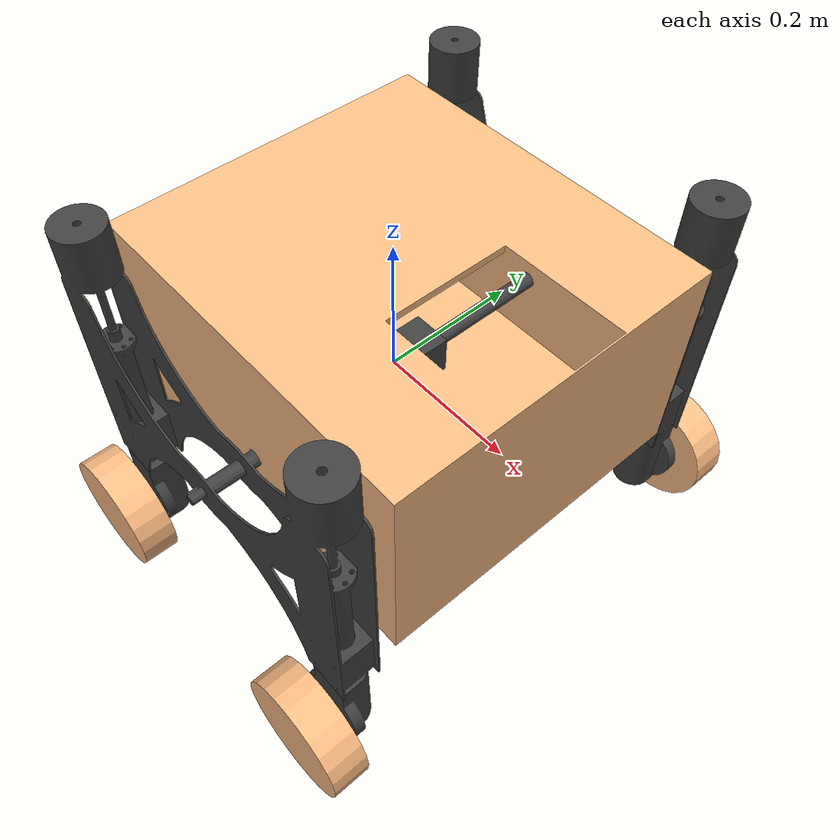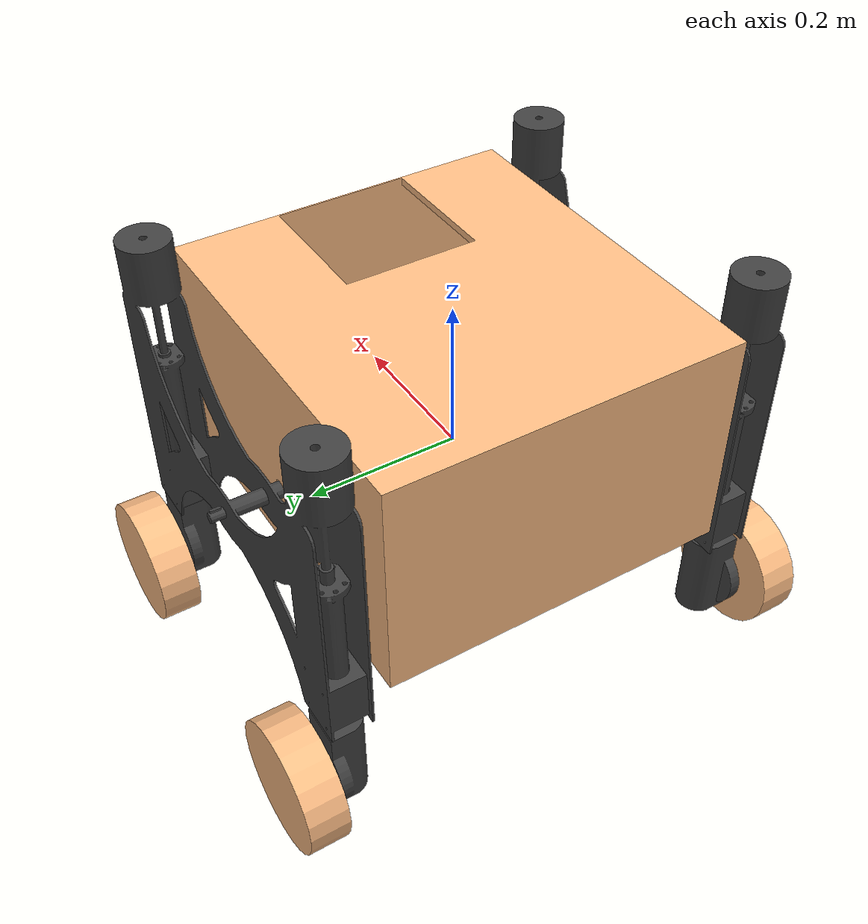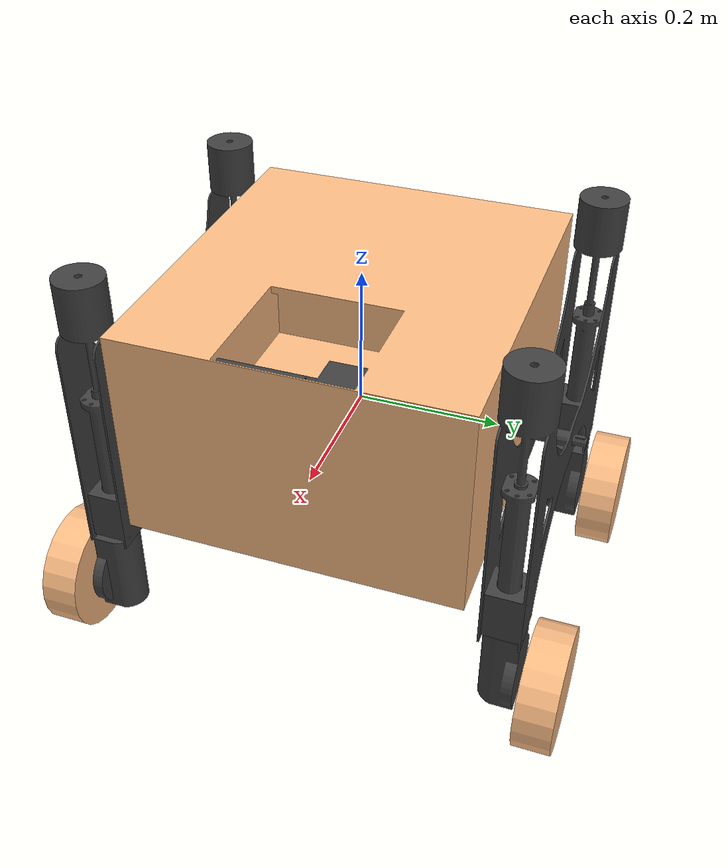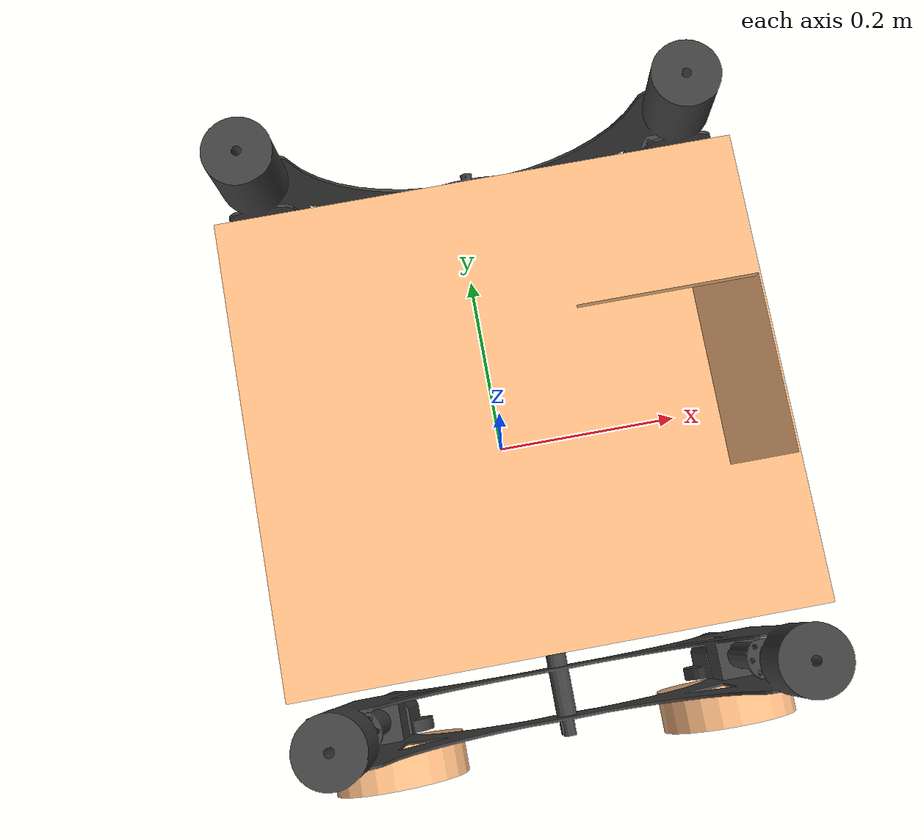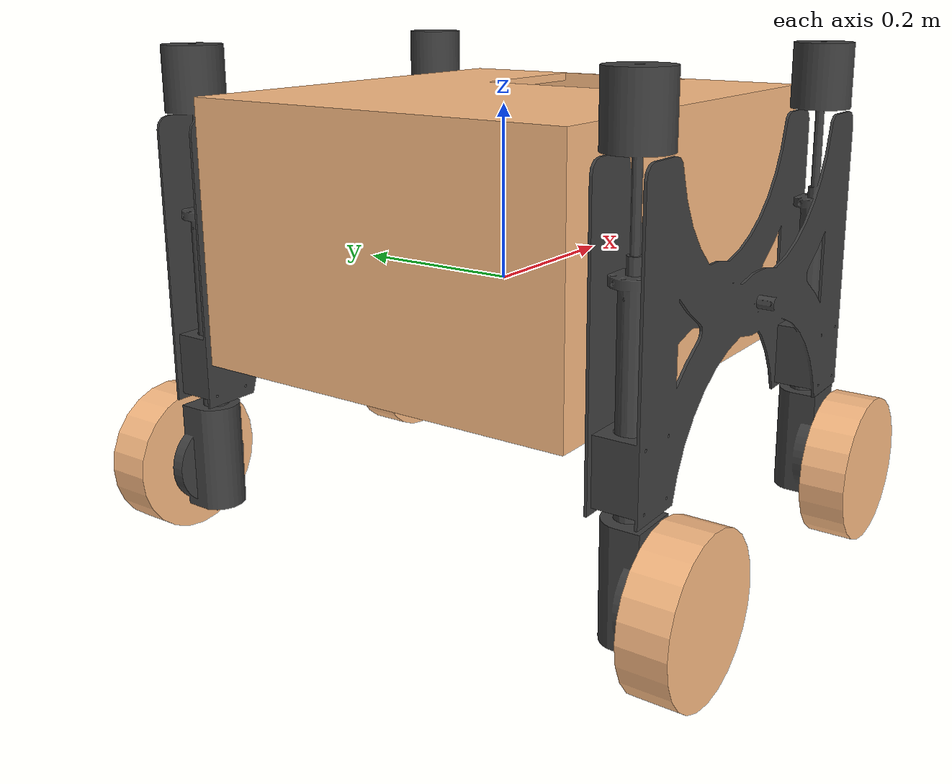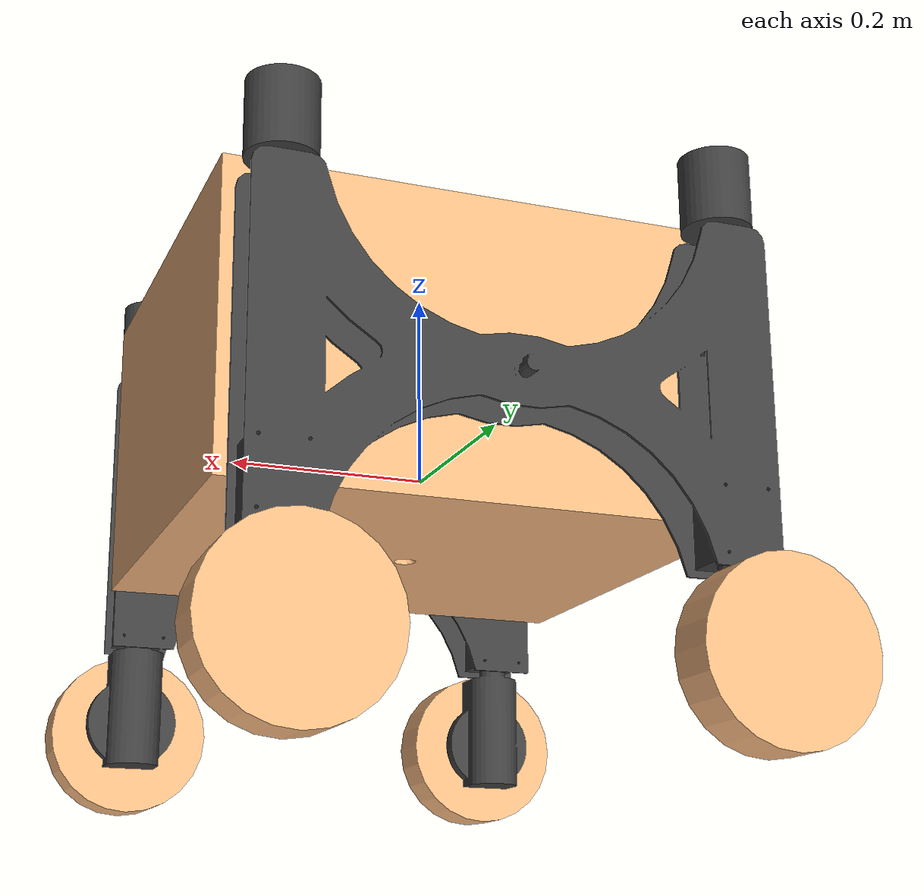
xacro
<?xml version="1.0"?>
<robot xmlns:xacro="http://www.ros.org/wiki/xacro">

  <!-- Materials -->
  <material name="orange">
    <color rgba="${252/255} ${188/255} ${132/255} 1" />
  </material>

  <material name="black">
    <color rgba="${64/255} ${64/255} ${64/255} 1" />
  </material>

  <material name="blue opaque">
    <color rgba="${0/255} ${0/255} ${255/255} 0.4" />
  </material>

  <material name="mesh_color">
    <color rgba="${0/255} ${0/255} ${255/255} 0.6" />
  </material>

  <!-- ________BASE LINK__________-->
  <link name="base_link" />

  <joint name="base_footprint_joint" type="fixed">
    <origin xyz="0 0 0" rpy="0 0 0"/>
    <parent link="base_link"/>
    <child link="base_footprint"/>
  </joint>

  <link name="base_footprint" />

  <joint name="base_to_chassis" type="fixed">
    <origin xyz="0 0 0" rpy="-3.1415 0 1.57079632679"/>
    <parent link="base_link"/>
    <child link="chassis_link"/>
  </joint>

  <!-- _____________CHASSIS LINK_____________-->
  <link name="chassis_link">
    <visual>
      <origin xyz="0 0 0" rpy="0 0 0"/>
      <geometry>
        <mesh filename="package://kridtbot/meshes/base_link.STL"/>
      </geometry>
      <material name="orange"/>
    </visual>
    <collision>
      <origin xyz="0 0 0" rpy="0 0 0"/>
      <geometry>
        <mesh filename="package://kridtbot/meshes/base_link.STL"/>
      </geometry>
      <material name="mesh_color"/>
    </collision>
    <inertial>
      <mass value="11.18100"/>
      <inertia ixx="0.52" ixy="0.00" ixz="0.00" iyy="0.48" iyz="0.04" izz="0.60"/>
    </inertial>
  </link>

  <gazebo reference="chassis_link">
    <material>Gazebo/Orange</material>
    <mu1 value="1"/>
    <mu2 value="1"/>
  </gazebo>

  <!-- _____________DIFF LINK____________-->
  <joint name="chassis_to_diff" type="fixed">
    <origin xyz="-0.00062572 0.016893 -0.01406" rpy="1.5708 0 -1.5708"/>
    <parent link="chassis_link"/>
    <child link="diff_link"/>
  </joint>

  <link name="diff_link">
    <visual>
      <origin xyz="0 0 0" rpy="0 0 0"/>
      <geometry>
        <mesh filename="package://kridtbot/meshes/diff_link.STL"/>
      </geometry>
      <material name="black"/>
    </visual>
    <collision>
      <origin xyz="0 0 0" rpy="0 0 0"/>
      <geometry>
        <mesh filename="package://kridtbot/meshes/diff_link.STL"/>
      </geometry>
      <material name="mesh_color"/>
    </collision>
    <inertial>
      <mass value="1.44"/>
      <inertia ixx="2024193.31e-9" ixy="258.53e-9" ixz="-42.56e-9" iyy="1553917.67e-9" iyz="559.93e-9" izz="1298088.14e-9"/>
    </inertial>
  </link>

  <gazebo reference="diff_link">
    <material>Gazebo/Orange</material>
    <mu1 value="1"/>
    <mu2 value="1"/>
  </gazebo>

  <!-- _____________ 1. LEFT DIFF LINK ____________-->
  <joint name="left_diff" type="fixed">
    <origin xyz="0 0 -0.28" rpy="-3.1416 0 -3.1416"/>
    <axis xyz="0 0 1"/>
    <parent link="diff_link"/>
    <child link="left_diff_link"/>
  </joint>

  <gazebo reference="left_diff">
    <material>Gazebo/Black</material>
    <mu1 value="1000"/>
    <mu2 value="1000"/>
    <provideFeedback>true</provideFeedback>
    <implicitSpringDamper>true</implicitSpringDamper>
  </gazebo>

  <link name="left_diff_link">
    <visual>
      <origin xyz="0 0 0" rpy="0 0 0"/>
      <geometry>
        <mesh filename="package://kridtbot/meshes/left_diff_link.STL"/>
      </geometry>
      <material name="black"/>
    </visual>
    <collision>
      <origin xyz="0 0 0" rpy="0 0 0"/>
      <geometry>
        <mesh filename="package://kridtbot/meshes/left_diff_link.STL"/>
      </geometry>
      <material name="mesh_color"/>
    </collision>
    <inertial>
      <mass value="7.30200"/>
      <inertia ixx="133810302.00e-9" ixy="35430.13e-9" ixz="356.93e-9" iyy="282054578.10e-9" iyz="-2296.44e-9" izz="397598064.18e-9"/>
    </inertial>
  </link>

  <gazebo reference="left_diff_link">
    <material>Gazebo/Black</material>
    <mu1 value="1"/>
    <mu2 value="1"/>
  </gazebo>

  <!-- _____________LEFT REAR LINEAR ACtuator____________-->

  <joint name="left_rear_linear" type="fixed">
    <limit effort="1000.0" lower="0" upper="0.13" velocity="0.5"/>
    <origin xyz="-0.216 -0.0010724 0" rpy="-1.5708 0 0.0049647"/>
    <axis xyz="0 0 1"/>
    <parent link="left_diff_link"/>
    <child link="left_rear_lin_link"/>
  </joint>

  <link name="left_rear_lin_link">
    <visual>
      <origin xyz="0 0 0" rpy="0 0 0"/>
      <geometry>
        <mesh filename="package://kridtbot/meshes/left_rear_lin_link.STL"/>
      </geometry>
      <material name="black"/>
    </visual>
    <collision>
      <origin xyz="0 0 0" rpy="0 0 0"/>
      <geometry>
        <mesh filename="package://kridtbot/meshes/left_rear_lin_link.STL"/>
      </geometry>
      <material name="mesh_color"/>
    </collision>
    <inertial>
      <mass value="1.04456"/>
      <inertia ixx="59743728.97e-9" ixy="-5941.33e-9" ixz="293509.06e-9" iyy="59856745.28e-9" iyz="-1015856.43e-9" izz="595093.96e-9"/>
    </inertial>
  </link>

  <gazebo reference="left_rear_lin_link">
    <material>Gazebo/Black</material>
  </gazebo>

  <!-- _____________LEFT REAR wheel ____________-->
  <joint name="left_rear_wheel" type="continuous">
    <origin xyz="0.0012158 0 0.2449" rpy="1.5708 0 0"/>
    <axis xyz="0 0 1"/>
    <parent link="left_rear_lin_link"/>
    <child link="left_rear_rev_link"/>
    <dynamics damping="0.7" friction="1"/>
  </joint>

  <link name="left_rear_rev_link">
    <visual>
      <origin xyz="0 0 0.06266" rpy="0 0 0"/>
      <geometry>
        <cylinder radius="0.0865" length="0.05234"/>
      </geometry>
      <material name="orange"/>
    </visual>
    <collision>
      <origin xyz="0 0 0.06266" rpy="0 0 0"/>
      <geometry>
        <cylinder radius="0.0865" length="0.05234"/>
      </geometry>
      <material name="mesh_color"/>
    </collision>
    <inertial>
      <mass value="1.01100"/>
      <inertia ixx="5844491.97e-9" ixy="-376.28e-9" ixz="-3671.08e-9" iyy="5842839.83e-9" iyz="-796.72e-9" izz="3646247.90e-9"/>
    </inertial>
  </link>

  <gazebo reference="left_rear_rev_link">
    <material>Gazebo/Orange</material>
    <mu1 value="3"/>
    <mu2 value="3"/>
    <kp>1000000.0</kp>
    <kd>1.0</kd>
  </gazebo>

  <!-- _____________LEFT FRONT LINEAR actuator____________-->
  <joint name="left_front_linear" type="fixed">
    <limit effort="1000.0" lower="0" upper="0.13" velocity="0.5"/>
    <origin xyz="0.216 0.0010724 0" rpy="-1.5708 0 0.0049647"/>
    <axis xyz="0 0 1"/>
    <parent link="left_diff_link"/>
    <child link="left_front_lin_link"/>
  </joint>

  <link name="left_front_lin_link">
    <visual>
      <origin xyz="0 0 0" rpy="0 0 0"/>
      <geometry>
        <mesh filename="package://kridtbot/meshes/front_left_lin_link.STL"/>
      </geometry>
      <material name="black"/>
    </visual>
    <collision>
      <origin xyz="0 0 0" rpy="0 0 0"/>
      <geometry>
        <mesh filename="package://kridtbot/meshes/front_left_lin_link.STL"/>
      </geometry>
      <material name="mesh_color"/>
    </collision>
    <inertial>
      <mass value="1.04456"/>
      <inertia ixx="59743728.97e-9" ixy="-5941.33e-9" ixz="293509.06e-9" iyy="59856745.28e-9" iyz="-1015856.43e-9" izz="595093.96e-9"/>
    </inertial>
  </link>

  <gazebo reference="left_front_lin_link">
    <material>Gazebo/Black</material>
  </gazebo>

  <!-- _____________LEFT FRONT wheel ____________-->
  <joint name="left_front_wheel" type="continuous">
    <origin xyz="0.0012158 0 0.2449" rpy="1.5708 0 0"/>
    <axis xyz="0 0 1"/>
    <parent link="left_front_lin_link"/>
    <child link="left_front_rev_link"/>
    <dynamics damping="0.7" friction="1"/>
  </joint>

  <link name="left_front_rev_link">
    <visual>
      <origin xyz="0 0 0.06266" rpy="0 0 0"/>
      <geometry>
        <cylinder radius="0.0865" length="0.05234"/>
      </geometry>
      <material name="orange"/>
    </visual>
    <collision>
      <origin xyz="0 0 0.06266" rpy="0 0 0"/>
      <geometry>
        <cylinder radius="0.0865" length="0.05234"/>
      </geometry>
      <material name="mesh_color"/>
    </collision>
    <inertial>
      <mass value="1.01100"/>
      <inertia ixx="5844491.97e-9" ixy="-376.28e-9" ixz="-3671.08e-9" iyy="5842839.83e-9" iyz="-796.72e-9" izz="3646247.90e-9"/>
    </inertial>
  </link>

  <gazebo reference="left_front_rev_link">
    <material>Gazebo/Black</material>
    <mu1 value="3"/>
    <mu2 value="3"/>
    <slip1 value="1"/>
    <slip2 value="1"/>
    <kp>1000000.0</kp>
    <kd>1.0</kd>
  </gazebo>

  <!-- _____________ 2. RIGHT DIFF LINK____________-->
  <joint name="right_diff" type="fixed">
    <origin xyz="0 0 0.28" rpy="0 0 0"/>
    <axis xyz="0 0 1"/>
    <parent link="diff_link"/>
    <child link="right_diff_link"/>
  </joint>

  <link name="right_diff_link">
    <visual>
      <origin xyz="0 0 0" rpy="0 0 0"/>
      <geometry>
        <mesh filename="package://kridtbot/meshes/rigth_diff_link.STL"/>
      </geometry>
      <material name="black"/>
    </visual>
    <collision>
      <origin xyz="0 0 0" rpy="0 0 0"/>
      <geometry>
        <mesh filename="package://kridtbot/meshes/rigth_diff_link.STL"/>
      </geometry>
      <material name="mesh_color"/>
    </collision>
    <inertial>
      <mass value="7.30200"/>
      <inertia ixx="133810688.94e-9" ixy="319399.82e-9" ixz="2255.98e-9" iyy="282053860.06e-9" iyz="-558.22e-9" izz="397597733.07e-9"/>
    </inertial>
  </link>

  <gazebo reference="right_diff_link">
    <material>Gazebo/Black</material>
    <mu1 value="1"/>
    <mu2 value="1"/>
  </gazebo>

  <!-- _____________RIGHT REAR LINEAR actuator ____________-->
  <joint name="right_rear_linear" type="fixed">
    <limit effort="1000.0" lower="0" upper="0.13" velocity="0.5"/>
    <origin xyz="0.216 -0.0010724 0" rpy="-1.5708 0 0.0049647"/>
    <axis xyz="0 0 1"/>
    <parent link="right_diff_link"/>
    <child link="right_rear_lin_link"/>
  </joint>

  <link name="right_rear_lin_link">
    <visual>
      <origin xyz="0 0 0" rpy="0 0 0"/>
      <geometry>
        <mesh filename="package://kridtbot/meshes/right_rear_lin_link.STL"/>
      </geometry>
      <material name="black"/>
    </visual>
    <collision>
      <origin xyz="0 0 0" rpy="0 0 0"/>
      <geometry>
        <mesh filename="package://kridtbot/meshes/right_rear_lin_link.STL"/>
      </geometry>
      <material name="mesh_color"/>
    </collision>
    <inertial>
      <mass value="1.04456"/>
      <inertia ixx="59743728.97e-9" ixy="-5941.33e-9" ixz="293509.06e-9" iyy="59856745.28e-9" iyz="-1015856.43e-9" izz="595093.96e-9"/>
    </inertial>
  </link>

  <gazebo reference="right_rear_lin_link">
    <material>Gazebo/Black</material>
  </gazebo>

  <!-- _____________RIGHT REAR wheel ____________-->
  <joint name="right_rear_wheel" type="continuous">
    <origin xyz="0.0012158 0 0.2449" rpy="1.5708 0 0"/>
    <axis xyz="0 0 1"/>
    <parent link="right_rear_lin_link"/>
    <child link="right_rear_rev_link"/>
    <dynamics damping="0.7" friction="1"/>
  </joint>

  <link name="right_rear_rev_link">
    <visual>
      <origin xyz="0 0 0.06266" rpy="0 0 0"/>
      <geometry>
        <cylinder radius="0.0865" length="0.05234"/>
      </geometry>
      <material name="orange"/>
    </visual>
    <collision>
      <origin xyz="0 0 0.06266" rpy="0 0 0"/>
      <geometry>
        <cylinder radius="0.0865" length="0.05234"/>
      </geometry>
      <material name="mesh_color"/>
    </collision>
    <inertial>
      <mass value="1.01100"/>
      <inertia ixx="5844491.97e-9" ixy="-376.28e-9" ixz="-3671.08e-9" iyy="5842839.83e-9" iyz="-796.72e-9" izz="3646247.90e-9"/>
    </inertial>
  </link>

  <gazebo reference="right_rear_rev_link">
    <material>Gazebo/Orange</material>
    <mu1 value="3"/>
    <mu2 value="3"/>
    <slip1 value="1"/>
    <slip2 value="1"/>
    <kp>1000000.0</kp>
    <kd>1.0</kd>
  </gazebo>

  <!-- _____________RIGHT FRONT LINEAR actuator ____________-->
  <joint name="right_front_linear" type="fixed">
    <limit effort="1000.0" lower="0" upper="0.13" velocity="0.5"/>
    <origin xyz="-0.216 0.0010724 0" rpy="-1.5708 0 0.0049647"/>
    <axis xyz="0 0 1"/>
    <parent link="right_diff_link"/>
    <child link="right_front_lin_link"/>
  </joint>

  <link name="right_front_lin_link">
    <visual>
      <origin xyz="0 0 0" rpy="0 0 0"/>
      <geometry>
        <mesh filename="package://kridtbot/meshes/right_front_lin_link.STL"/>
      </geometry>
      <material name="black"/>
    </visual>
    <collision>
      <origin xyz="0 0 0" rpy="0 0 0"/>
      <geometry>
        <mesh filename="package://kridtbot/meshes/right_front_lin_link.STL"/>
      </geometry>
      <material name="mesh_color"/>
    </collision>
    <inertial>
      <mass value="1.04456"/>
      <inertia ixx="59743728.97e-9" ixy="-5941.33e-9" ixz="293509.06e-9" iyy="59856745.28e-9" iyz="-1015856.43e-9" izz="595093.96e-9"/>
    </inertial>
  </link>

  <gazebo reference="right_front_lin_link">
    <material>Gazebo/Black</material>
  </gazebo>

  <!-- _____________RIGHT FRONT wheel ____________-->
  <joint name="right_front_wheel" type="continuous">
    <origin xyz="0.0012158 0 0.2449" rpy="1.5708 0 0"/>
    <axis xyz="0 0 1"/>
    <parent link="right_front_lin_link"/>
    <child link="right_front_rev_link"/>
    <dynamics damping="0.7" friction="1"/>
  </joint>

  <link name="right_front_rev_link">
    <visual>
      <origin xyz="0 0 0.06266" rpy="0 0 0"/>
      <geometry>
        <cylinder radius="0.0865" length="0.05234"/>
      </geometry>
      <material name="orange"/>
    </visual>
    <collision>
      <origin xyz="0 0 0.06266" rpy="0 0 0"/>
      <geometry>
        <cylinder radius="0.0865" length="0.05234"/>
      </geometry>
      <material name="mesh_color"/>
    </collision>
    <inertial>
      <mass value="1.01100"/>
      <inertia ixx="5844491.97e-9" ixy="-376.28e-9" ixz="-3671.08e-9" iyy="5842839.83e-9" iyz="-796.72e-9" izz="3646247.90e-9"/>
    </inertial>
  </link>

  <gazebo reference="right_front_rev_link">
    <material>Gazebo/Orange</material>
    <mu1 value="3"/>
    <mu2 value="3"/>
    <slip1 value="1"/>
    <slip2 value="1"/>
    <kp>1000000.0</kp>
    <kd>1.0</kd>
  </gazebo>

<!-- _____________ 3. CENTER DIFF LINK____________-->
  <joint name="center_diff" type="fixed">
    <origin xyz="0.0 0.05 0" rpy="1.57079632679 0 0"/> <!-- Adjusted orientation -->
    <axis xyz="0 0 1"/>  <!-- Rotates along X-axis -->
    <parent link="diff_link"/>
    <child link="center_diff_link"/>
  </joint>

  <link name="center_diff_link">
    <visual>
      <origin xyz="0 0 0" rpy="0 0 0"/>
      <geometry>
        <cylinder radius="0.007" length="0.05"/>
      </geometry>
      <material name="black"/>
    </visual>
    <collision>
      <origin xyz="0 0 0" rpy="0 0 0"/>
      <geometry>
        <cylinder radius="0.007" length="0.05"/>
      </geometry>
      <material name="mesh_color"/>
    </collision>
    <inertial>
      <mass value="2.0"/>
      <inertia ixx="5000000e-9" ixy="0" ixz="0" iyy="5000000e-9" iyz="0" izz="5000000e-9"/>
    </inertial>
  </link>

  <gazebo reference="center_diff_link">
    <material>Gazebo/Black</material>
    <mu1 value="1"/>
    <mu2 value="1"/>
  </gazebo>

  <!--   Differential gear -->

</robot>
